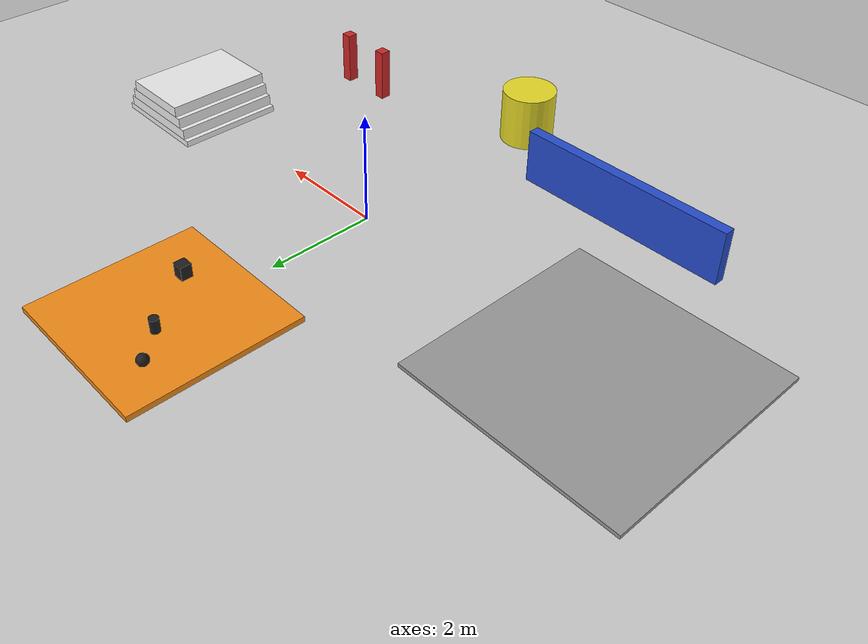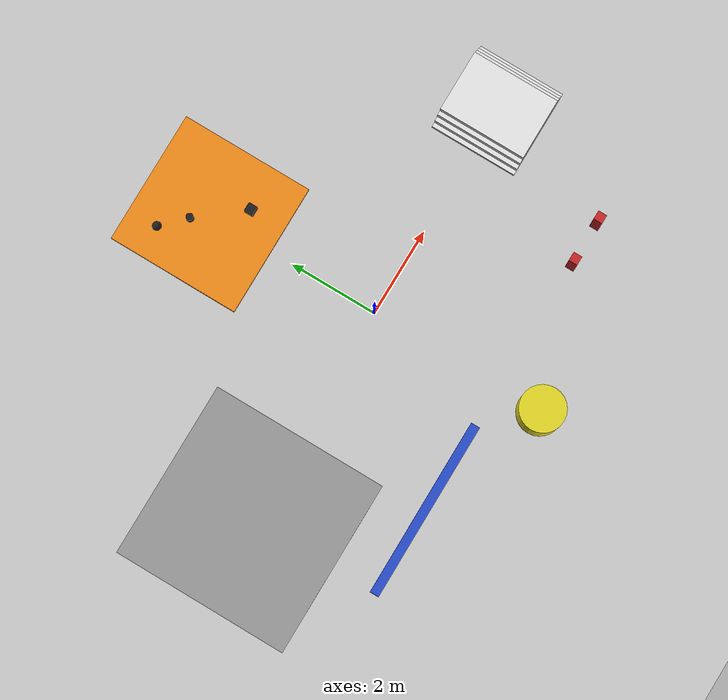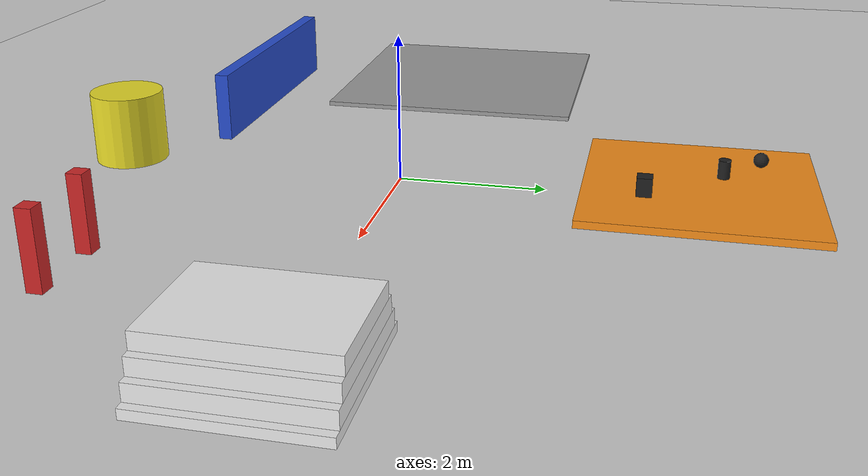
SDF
<sdf version="1.6">
 <world name="advanced_test_world">
  <include><uri>model://ground_plane</uri></include>
  <light name="sun" type="directional">
   <pose>0 0 10 0 0 0</pose>
   <diffuse>0.8 0.8 0.8 1</diffuse>
   <specular>0.2 0.2 0.2 1</specular>
   <attenuation>
    <range>1000</range>
    <constant>0.9</constant>
    <linear>0.01</linear>
    <quadratic>0.001</quadratic>
   </attenuation>
   <direction>-0.3 0.3 -1</direction>
  </light>
  <model name="flat_area">
   <pose>-5 0 0 0 0 0</pose>
   <static>true</static>
   <link name="flat_link">
    <collision name="flat_collision"><geometry><box><size>4 4 0.1</size></box></geometry></collision>
    <visual name="flat_visual">
     <geometry><box><size>4 4 0.1</size></box></geometry>
     <material>
      <script><uri>file://media/materials/scripts/gazebo.material</uri><name>Gazebo/Grey</name></script>
     </material>
    </visual>
   </link>
  </model>
  <model name="stairs">
   <pose>5 0 0 0 0 0</pose>
   <static>true</static>
   <link name="stairs_base">
    <collision name="stairs_base_collision"><geometry><box><size>2 2 0.2</size></box></geometry></collision>
    <visual name="stairs_base_visual">
     <geometry><box><size>2 2 0.2</size></box></geometry>
     <material>
      <script><uri>file://media/materials/scripts/gazebo.material</uri><name>Gazebo/White</name></script>
     </material>
    </visual>
   </link>
   <link name="stairs_step1">
    <pose>0 0 0.2 0 0 0</pose>
    <collision name="stairs_step1_collision"><geometry><box><size>1.8 2 0.2</size></box></geometry></collision>
    <visual name="stairs_step1_visual">
     <geometry><box><size>1.8 2 0.2</size></box></geometry>
     <material>
      <script><uri>file://media/materials/scripts/gazebo.material</uri><name>Gazebo/White</name></script>
     </material>
    </visual>
   </link>
   <link name="stairs_step2">
    <pose>0 0 0.4 0 0 0</pose>
    <collision name="stairs_step2_collision"><geometry><box><size>1.6 2 0.2</size></box></geometry></collision>
    <visual name="stairs_step2_visual">
     <geometry><box><size>1.6 2 0.2</size></box></geometry>
     <material>
      <script><uri>file://media/materials/scripts/gazebo.material</uri><name>Gazebo/White</name></script>
     </material>
    </visual>
   </link>
   <link name="stairs_step3">
    <pose>0 0 0.6 0 0 0</pose>
    <collision name="stairs_step3_collision"><geometry><box><size>1.4 2 0.2</size></box></geometry></collision>
    <visual name="stairs_step3_visual">
     <geometry><box><size>1.4 2 0.2</size></box></geometry>
     <material>
      <script><uri>file://media/materials/scripts/gazebo.material</uri><name>Gazebo/White</name></script>
     </material>
    </visual>
   </link>
  </model>
  <model name="wall_obstacle">
   <pose>-3 -3 0.5 0 0 0</pose>
   <static>true</static>
   <link name="wall_link">
    <collision name="wall_collision"><geometry><box><size>4 0.2 1</size></box></geometry></collision>
    <visual name="wall_visual">
     <geometry><box><size>4 0.2 1</size></box></geometry>
     <material>
      <script><uri>file://media/materials/scripts/gazebo.material</uri><name>Gazebo/Blue</name></script>
     </material>
    </visual>
   </link>
  </model>
  <model name="moving_obstacle">
   <pose>0 -4 0.5 0 0 0</pose>
   <static>false</static>
   <link name="moving_link">
    <collision name="moving_collision">
     <geometry><cylinder><radius>0.5</radius><length>1</length></cylinder></geometry>
    </collision>
    <visual name="moving_visual">
     <geometry><cylinder><radius>0.5</radius><length>1</length></cylinder></geometry>
     <material>
      <script><uri>file://media/materials/scripts/gazebo.material</uri><name>Gazebo/Yellow</name></script>
     </material>
    </visual>
    <inertial><mass>1.0</mass><inertia><ixx>0.1</ixx><iyy>0.1</iyy><izz>0.1</izz></inertia></inertial>
   </link>
   <plugin name="trajectory" filename="libgazebo_ros_p3d.so">
    <alwaysOn>true</alwaysOn>
    <updateRate>10</updateRate>
    <bodyName>moving_link</bodyName>
    <topicName>moving_obstacle/pose</topicName>
   </plugin>
  </model>
  <model name="narrow_passage">
   <pose>3 -3 0.5 0 0 0</pose>
   <static>true</static>
   <link name="left_pillar">
    <collision name="left_pillar_collision"><geometry><box><size>0.2 0.2 1</size></box></geometry></collision>
    <visual name="left_pillar_visual">
     <geometry><box><size>0.2 0.2 1</size></box></geometry>
     <material>
      <script><uri>file://media/materials/scripts/gazebo.material</uri><name>Gazebo/Red</name></script>
     </material>
    </visual>
   </link>
   <link name="right_pillar">
    <pose>1 0 0 0 0 0</pose>
    <collision name="right_pillar_collision"><geometry><box><size>0.2 0.2 1</size></box></geometry></collision>
    <visual name="right_pillar_visual">
     <geometry><box><size>0.2 0.2 1</size></box></geometry>
     <material>
      <script><uri>file://media/materials/scripts/gazebo.material</uri><name>Gazebo/Red</name></script>
     </material>
    </visual>
   </link>
  </model>
  <model name="cluttered_area">
   <pose>0 4 0.2 0 0 0</pose>
   <static>true</static>
   <link name="clutter_base">
    <collision name="clutter_base_collision"><geometry><box><size>3 3 0.1</size></box></geometry></collision>
    <visual name="clutter_base_visual">
     <geometry><box><size>3 3 0.1</size></box></geometry>
     <material>
      <script><uri>file://media/materials/scripts/gazebo.material</uri><name>Gazebo/Orange</name></script>
     </material>
    </visual>
   </link>
   <link name="clutter_object_1">
    <pose>-0.8 0.8 0.15 0 0 0</pose>
    <collision name="clutter_object_1_collision">
     <geometry><sphere><radius>0.1</radius></sphere></geometry>
    </collision>
    <visual name="clutter_object_1_visual">
     <geometry><sphere><radius>0.1</radius></sphere></geometry>
     <material>
      <script><uri>file://media/materials/scripts/gazebo.material</uri><name>Gazebo/Black</name></script>
     </material>
    </visual>
   </link>
   <link name="clutter_object_2">
    <pose>0.5 -0.7 0.15 0 0 0</pose>
    <collision name="clutter_object_2_collision">
     <geometry><box><size>0.2 0.2 0.3</size></box></geometry>
    </collision>
    <visual name="clutter_object_2_visual">
     <geometry><box><size>0.2 0.2 0.3</size></box></geometry>
     <material>
      <script><uri>file://media/materials/scripts/gazebo.material</uri><name>Gazebo/Black</name></script>
     </material>
    </visual>
   </link>
   <link name="clutter_object_3">
    <pose>-0.3 0.3 0.15 0 0 0</pose>
    <collision name="clutter_object_3_collision">
     <geometry><cylinder><radius>0.08</radius><length>0.3</length></cylinder></geometry>
    </collision>
    <visual name="clutter_object_3_visual">
     <geometry><cylinder><radius>0.08</radius><length>0.3</length></cylinder></geometry>
     <material>
      <script><uri>file://media/materials/scripts/gazebo.material</uri><name>Gazebo/Black</name></script>
     </material>
    </visual>
   </link>
  </model>
  <light name="spot_light" type="spot">
   <pose>0 5 3 0 0 0</pose>
   <diffuse>0.5 0.5 1 1</diffuse>
   <specular>0.5 0.5 1 1</specular>
   <attenuation>
    <range>10</range>
    <constant>0.2</constant>
    <linear>0.01</linear>
    <quadratic>0.001</quadratic>
   </attenuation>
   <direction>-0.1 -0.1 -1</direction>
   <spot><inner_angle>0.1</inner_angle><outer_angle>0.5</outer_angle><falloff>0.8</falloff></spot>
  </light>
 </world>
</sdf>
